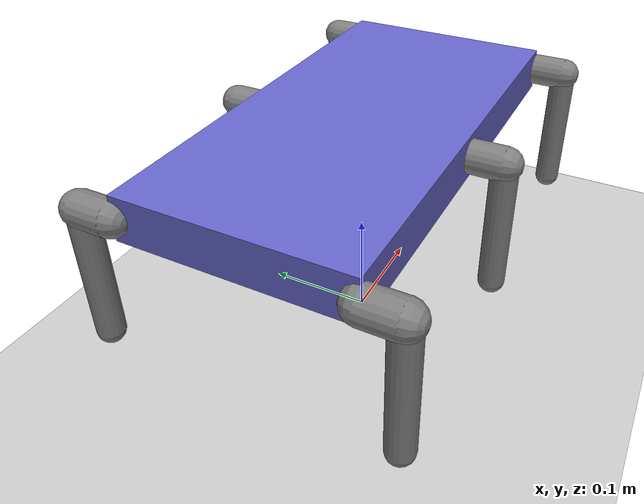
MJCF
<!-- Custom instatiation of hexapod - pawojcik -->

<mujoco model="hexapod">
    <option timestep="0.002" gravity="0 0 -9.81"/>

    <!-- for fun -->
    <asset>
        <texture name="grid" type="2d" builtin="checker" rgb1=".1 .2 .3"
                 rgb2=".2 .3 .4" width="300" height="300" mark="edge"
                 markrgb="0.8 0.8 0.8"/>

        <material name="grid" texture="grid" texrepeat="5 5"
                  texuniform="true"/>
    </asset>

    <worldbody>
        <light pos="0 0 2" dir="0 0 -1"/>
        <geom name="floor" type="plane" size="5 5 0.1" material="grid" rgba="0.8 0.8 0.8 1"/>

        <body name="torso" pos="0 0 0.2">
            <freejoint/>  <!-- lets torso move -->
            <geom type="box" size="0.2 0.1 0.02" rgba="0.4 0.4 0.8 1"/>

            <!-- Leg1 front left (corner) -->
            <body name="leg1" pos="0.2 0.1 0" euler="0 0 90">
                <joint name="hip1" type="hinge" axis="0 0 1" range="-60 60"/>
                <geom type="capsule" fromto="0 0 0  0.03 0 0" size="0.015"/>

                <body name="knee_joint_1" pos="0.03 0 0">
                    <joint name="knee1" type="hinge" axis="0 1 0" range="-90 10"/>
                    <geom type="capsule" fromto="0 0 0  0 0 -0.12" size="0.012"/>
                </body>

            </body>

            <!-- Leg2 middle left -->
            <body name="leg2" pos="0 0.1 0" euler="0 0 90">
                <joint name="hip2" type="hinge" axis="0 0 1" range="-60 60"/>
                <geom type="capsule" fromto="0 0 0  0.03 0 0" size="0.015"/>

                <body name="knee_joint_2" pos="0.03 0 0">
                    <joint name="knee2" type="hinge" axis="0 1 0" range="-90 10"/>
                    <geom type="capsule" fromto="0 0 0  0 0 -0.12" size="0.012"/>
                </body>
            </body>

            <!-- Leg3 back left (corner) -->
            <body name="leg3" pos="-0.20 0.10 0" euler="0 0 90">
                <joint name="hip3" type="hinge" axis="0 0 1" range="-60 60"/>
                <geom type="capsule" fromto="0 0 0  0.03 0 0" size="0.015"/>

                <body name="knee_joint_3" pos="0.03 0 0">
                    <joint name="knee3" type="hinge" axis="0 1 0" range="-90 10"/>
                    <geom type="capsule" fromto="0 0 0  0 0 -0.12" size="0.012"/>
                </body>
            </body>

            <!-- Leg4 front right (corner) -->
            <body name="leg4" pos="0.20 -0.10 0" euler="0 0 -90">
                <joint name="hip4" type="hinge" axis="0 0 1" range="-60 60"/>
                <geom type="capsule" fromto="0 0 0  0.03 0 0" size="0.015"/>

                <body name="knee_joint_4" pos="0.03 0 0">
                    <joint name="knee4" type="hinge" axis="0 1 0" range="-90 10"/>
                    <geom type="capsule" fromto="0 0 0  0 0 -0.12" size="0.012"/>
                </body>
            </body>

            <!-- Leg5 middle right — straight out, no corner angle -->
            <body name="leg5" pos="0 -0.1 0" euler="0 0 -90">
                <joint name="hip5" type="hinge" axis="0 0 1" range="-60 60"/>
                <geom type="capsule" fromto="0 0 0  0.03 0 0" size="0.015"/>

                <body name="knee_joint_5" pos="0.03 0 0">
                    <joint name="knee5" type="hinge" axis="0 1 0" range="-90 10"/>
                    <geom type="capsule" fromto="0 0 0  0 0 -0.12" size="0.012"/>
                </body>
            </body>

            <!-- Leg4 back right (corner) -->
            <body name="leg6" pos="-0.2 -0.1 0" euler="0 0 -90">
                <joint name="hip6" type="hinge" axis="0 0 1" range="-60 60"/>
                <geom type="capsule" fromto="0 0 0  0.03 0 0" size="0.015"/>

                <body name="knee_joint_6" pos="0.03 0 0">
                    <joint name="knee6" type="hinge" axis="0 1 0" range="-90 10"/>
                    <geom type="capsule" fromto="0 0 0  0 0 -0.12" size="0.012"/>
                </body>
            </body>

        </body>
    </worldbody>

    <actuator>
        <!-- 2 per leg, 12 total -->
        <position name="act_hip_1"  joint="hip1"  kp="10"/>
        <position name="act_knee_1" joint="knee1" kp="10"/>

        <position name="act_hip_2"  joint="hip2"  kp="10"/>
        <position name="act_knee_2" joint="knee2" kp="10"/>

        <position name="act_hip_3"  joint="hip3"  kp="10"/>
        <position name="act_knee_3" joint="knee3" kp="10"/>

        <position name="act_hip_4"  joint="hip4"  kp="10"/>
        <position name="act_knee_4" joint="knee4" kp="10"/>

        <position name="act_hip_5"  joint="hip5"  kp="10"/>
        <position name="act_knee_5" joint="knee5" kp="10"/>

        <position name="act_hip_6"  joint="hip6"  kp="10"/>
        <position name="act_knee_6" joint="knee6" kp="10"/>
    </actuator>
</mujoco>
